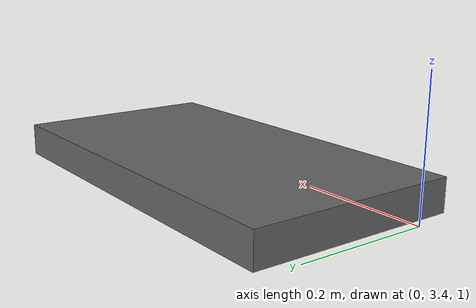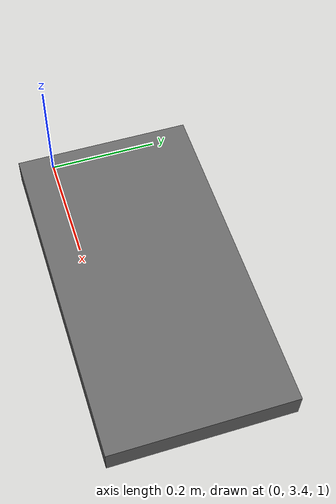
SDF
<?xml version="1.0" ?>
<!-- tmp sdf file generated from LISDF -->
<sdf version="1.9">
  <world name="tmp_world">

<model name="sink_counter_left">
  <static>True</static>
  <pose>0.3109999895095825 3.496000051498413 1.0260000228881836 0.0 -0.0 0.0</pose>
  <link name="box">

    <inertial>
      <mass>0</mass>
      <pose>0.0 0.0 0.0 0.0 -0.0 0.0</pose>
      <inertia>
        <ixx>0</ixx>
        <ixy>0</ixy>
        <ixz>0</ixz>
        <iyy>0</iyy>
        <iyz>0</iyz>
        <izz>0</izz>
      </inertia>
    </inertial>
    <collision name="box_collision">>
      <pose>0.0 0.0 0.0 0.0 -0.0 0.0</pose>
      <geometry>
        <box>
          <size>0.5950000286102295 0.32199999690055847 0.05000000074505806</size>
        </box>
      </geometry>

    </collision>
    <visual name="box_visual">
      <pose>0.0 0.0 0.0 0.0 -0.0 0.0</pose>
      <geometry>
        <box>
          <size>0.5950000286102295 0.32199999690055847 0.05000000074505806</size>
        </box>
      </geometry>
      <material>
        <ambient>1.0 1.0 1.0 1.0</ambient>
        <diffuse>0.4000000059604645 0.4000000059604645 0.4000000059604645 1.0</diffuse>
        <specular>0.0 0.0 0.0 1.0</specular>
        <emissive>0.0 0.0 0.0 1.0</emissive>
      </material>
      <cast_shadows>True</cast_shadows>
    </visual>
    <self_collide>True</self_collide>
  </link>

</model>

  </world>
</sdf>
